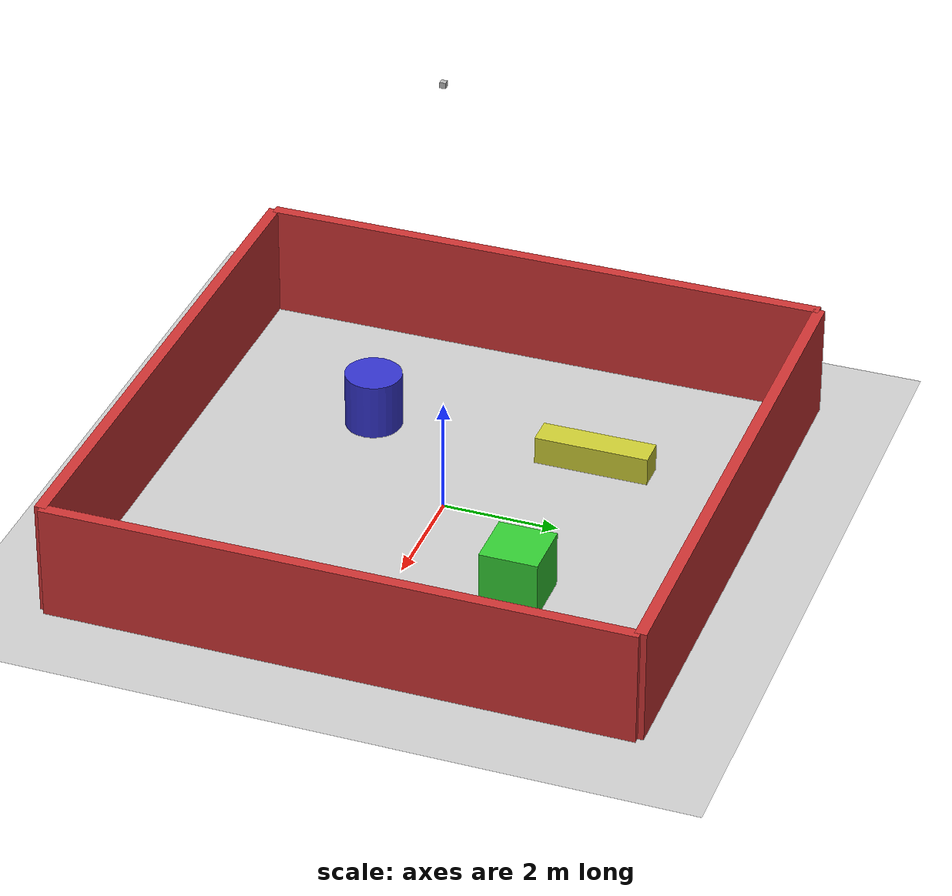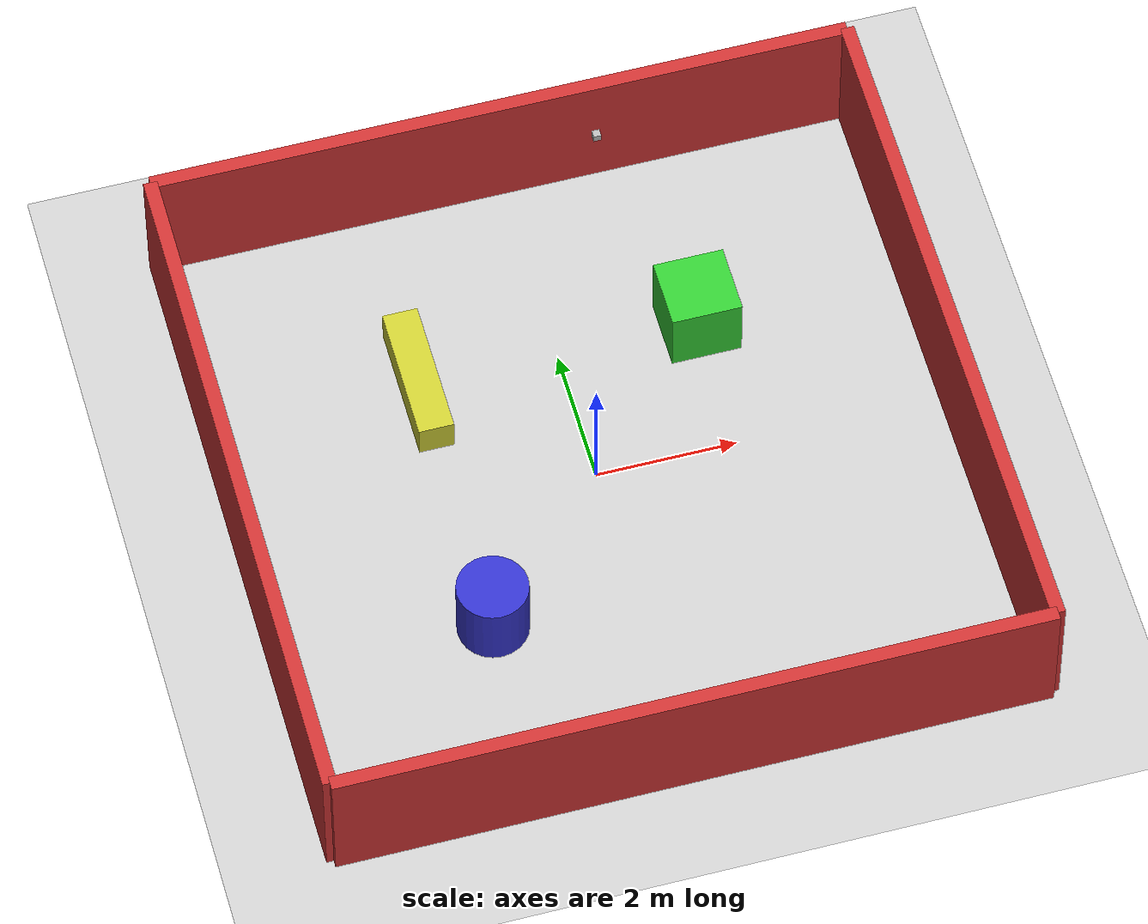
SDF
<?xml version="1.0"?>
<sdf version="1.6">
  <world name="simple_track">
    <!-- Physics settings -->
    <physics type="ode">
      <max_step_size>0.001</max_step_size>
      <real_time_factor>1</real_time_factor>
      <real_time_update_rate>1000</real_time_update_rate>
    </physics>

    <!-- A global light source -->
    <include>
      <uri>model://sun</uri>
    </include>

    <!-- Ground plane -->
    <include>
      <uri>model://ground_plane</uri>
    </include>

    <!-- Simple track with walls -->
    <!-- Outer boundary walls -->
    <model name="outer_wall_1">
      <static>true</static>
      <pose>0 5 1 0 0 0</pose>
      <link name="link">
        <collision name="collision">
          <geometry>
            <box>
              <size>10 0.2 2</size>
            </box>
          </geometry>
        </collision>
        <visual name="visual">
          <geometry>
            <box>
              <size>10 0.2 2</size>
            </box>
          </geometry>
          <material>
            <ambient>0.8 0.2 0.2 1</ambient>
            <diffuse>0.8 0.2 0.2 1</diffuse>
          </material>
        </visual>
      </link>
    </model>

    <model name="outer_wall_2">
      <static>true</static>
      <pose>0 -5 1 0 0 0</pose>
      <link name="link">
        <collision name="collision">
          <geometry>
            <box>
              <size>10 0.2 2</size>
            </box>
          </geometry>
        </collision>
        <visual name="visual">
          <geometry>
            <box>
              <size>10 0.2 2</size>
            </box>
          </geometry>
          <material>
            <ambient>0.8 0.2 0.2 1</ambient>
            <diffuse>0.8 0.2 0.2 1</diffuse>
          </material>
        </visual>
      </link>
    </model>

    <model name="outer_wall_3">
      <static>true</static>
      <pose>5 0 1 0 0 1.5707963</pose>
      <link name="link">
        <collision name="collision">
          <geometry>
            <box>
              <size>10 0.2 2</size>
            </box>
          </geometry>
        </collision>
        <visual name="visual">
          <geometry>
            <box>
              <size>10 0.2 2</size>
            </box>
          </geometry>
          <material>
            <ambient>0.8 0.2 0.2 1</ambient>
            <diffuse>0.8 0.2 0.2 1</diffuse>
          </material>
        </visual>
      </link>
    </model>

    <model name="outer_wall_4">
      <static>true</static>
      <pose>-5 0 1 0 0 1.5707963</pose>
      <link name="link">
        <collision name="collision">
          <geometry>
            <box>
              <size>10 0.2 2</size>
            </box>
          </geometry>
        </collision>
        <visual name="visual">
          <geometry>
            <box>
              <size>10 0.2 2</size>
            </box>
          </geometry>
          <material>
            <ambient>0.8 0.2 0.2 1</ambient>
            <diffuse>0.8 0.2 0.2 1</diffuse>
          </material>
        </visual>
      </link>
    </model>

    <!-- Inner obstacles -->
    <model name="obstacle_1">
      <static>true</static>
      <pose>2 2 0.5 0 0 0</pose>
      <link name="link">
        <collision name="collision">
          <geometry>
            <box>
              <size>1 1 1</size>
            </box>
          </geometry>
        </collision>
        <visual name="visual">
          <geometry>
            <box>
              <size>1 1 1</size>
            </box>
          </geometry>
          <material>
            <ambient>0.2 0.8 0.2 1</ambient>
            <diffuse>0.2 0.8 0.2 1</diffuse>
          </material>
        </visual>
      </link>
    </model>

    <model name="obstacle_2">
      <static>true</static>
      <pose>-2 -2 0.5 0 0 0</pose>
      <link name="link">
        <collision name="collision">
          <geometry>
            <cylinder>
              <radius>0.5</radius>
              <length>1</length>
            </cylinder>
          </geometry>
        </collision>
        <visual name="visual">
          <geometry>
            <cylinder>
              <radius>0.5</radius>
              <length>1</length>
            </cylinder>
          </geometry>
          <material>
            <ambient>0.2 0.2 0.8 1</ambient>
            <diffuse>0.2 0.2 0.8 1</diffuse>
          </material>
        </visual>
      </link>
    </model>

    <model name="obstacle_3">
      <static>true</static>
      <pose>-2 2 0.25 0 0 0</pose>
      <link name="link">
        <collision name="collision">
          <geometry>
            <box>
              <size>0.5 2 0.5</size>
            </box>
          </geometry>
        </collision>
        <visual name="visual">
          <geometry>
            <box>
              <size>0.5 2 0.5</size>
            </box>
          </geometry>
          <material>
            <ambient>0.8 0.8 0.2 1</ambient>
            <diffuse>0.8 0.8 0.2 1</diffuse>
          </material>
        </visual>
      </link>
    </model>

    <!-- Overhead camera looking at the QCar -->
    <model name="overhead_camera">
      <static>true</static>
      <!-- Position camera above spawn point looking straight down -->
      <!-- Pose: x y z roll pitch yaw -->
      <!-- Positioned at (0, 0, 8) directly above center, looking straight down -->
      <!-- pitch=1.5708 (90 degrees) points camera straight down -->
      <pose>0 0 8 0 1.5708 0</pose>
      <link name="link">
        <visual name="visual">
          <geometry>
            <box>
              <size>0.1 0.1 0.1</size>
            </box>
          </geometry>
        </visual>
        <sensor name="overhead_camera_sensor" type="camera">
          <camera>
            <horizontal_fov>1.57</horizontal_fov>
            <image>
              <width>800</width>
              <height>600</height>
              <format>R8G8B8</format>
            </image>
            <clip>
              <near>0.1</near>
              <far>100</far>
            </clip>
          </camera>
          <always_on>1</always_on>
          <update_rate>30</update_rate>
          <visualize>true</visualize>
          <plugin name="overhead_camera_controller" filename="libgazebo_ros_camera.so">
            <ros>
              <namespace>/qcar</namespace>
              <remapping>overhead_camera_sensor/image_raw:=overhead/image_raw</remapping>
              <remapping>overhead_camera_sensor/camera_info:=overhead/camera_info</remapping>
            </ros>
            <camera_name>overhead</camera_name>
            <frame_name>overhead_camera_link</frame_name>
            <hack_baseline>0.07</hack_baseline>
          </plugin>
        </sensor>
      </link>
    </model>

    <!-- Scene lighting -->
    <light type="directional" name="directional_light_1">
      <pose>5 5 10 0 0 0</pose>
      <diffuse>0.8 0.8 0.8 1</diffuse>
      <specular>0.2 0.2 0.2 1</specular>
      <direction>-0.5 -0.5 -1</direction>
    </light>

    <light type="point" name="point_light_1">
      <pose>0 0 5 0 0 0</pose>
      <diffuse>0.5 0.5 0.5 1</diffuse>
      <specular>0.1 0.1 0.1 1</specular>
      <attenuation>
        <range>20</range>
        <constant>0.5</constant>
        <linear>0.01</linear>
        <quadratic>0.001</quadratic>
      </attenuation>
    </light>

  </world>
</sdf>
